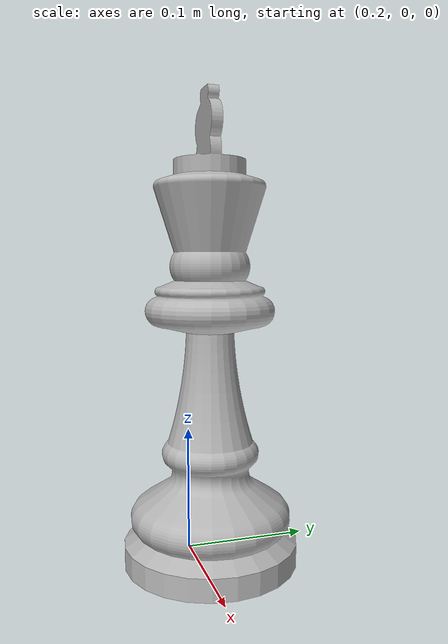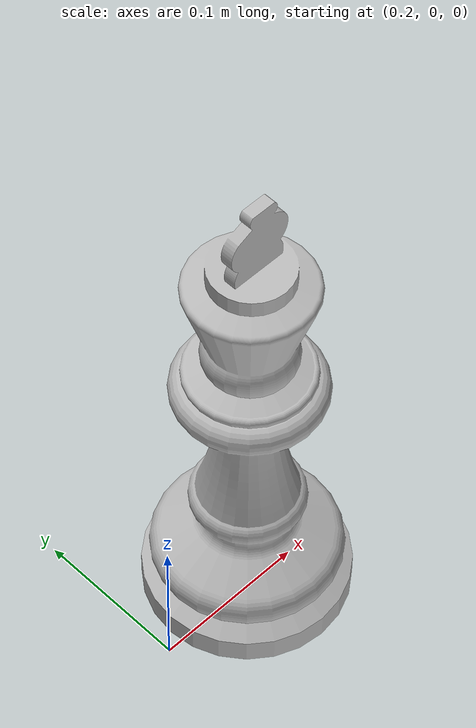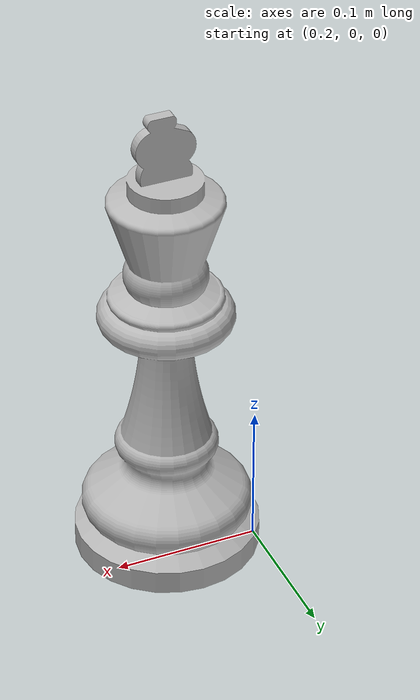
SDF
<?xml version="1.0" ?>
<sdf version="1.5">
  <model name="king_chess">
    <static>true</static>
    <link name="link">
      <collision name="collision">
        <geometry>
            <box>
            	<size>0.5 0.5 1.7</size>
            </box>
        </geometry>
      </collision>
      <visual name="visual">
      	<cast_shadows>true</cast_shadows>
        <geometry>
          <mesh>
            <uri>model://king_chess/meshes/model.dae</uri>
          </mesh>
        </geometry>
      </visual>
    </link>
   </model>
</sdf>
